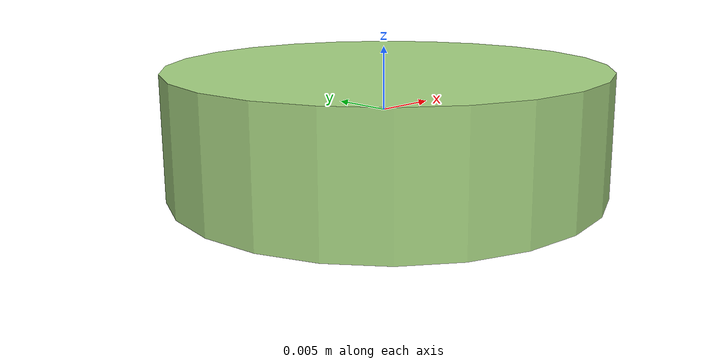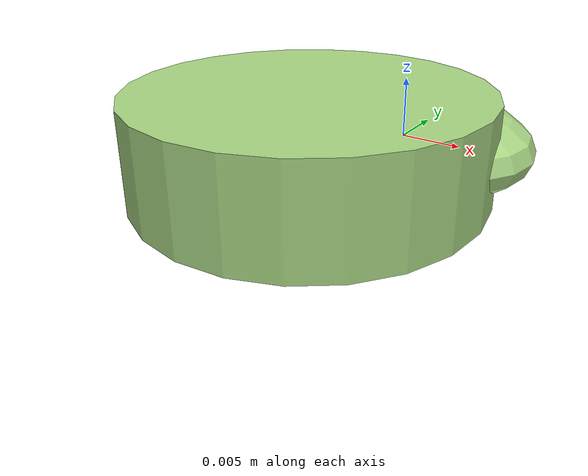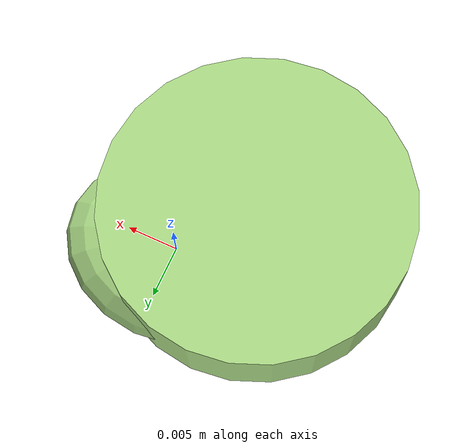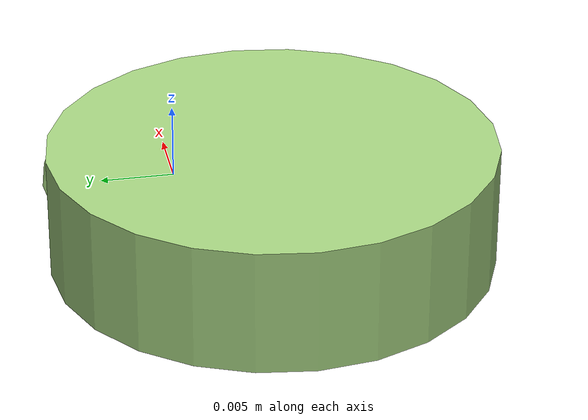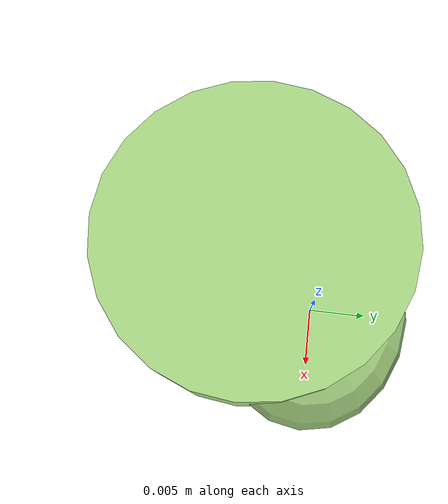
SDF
<?xml version="1.0" ?>
<!-- |    This document was autogenerated by xmacro from data/veggie_template/veggie_base.sdf.xacro  | -->
<!-- |    EDITING THIS FILE BY HAND IS NOT RECOMMENDED                                               | -->
<sdf version="1.8">
	<!-- Parameters -->
	<!-- Base -->
	<!-- Joint 0 -->
	<!-- Link 1 -->
	<!-- Joint 1 -->
	<!-- Link 2 -->
	<!-- Primitives -->
	<!-- All dimensions are half -->
	<!-- Object -->
	<model name="veggie">
		<!-- link0 -->
		<link name="link0">
			<inertial>
				<mass>0.0016902984023957892</mass>
				<inertia>
					<ixx>3.2947850972244385e-08</ixx>
					<ixy>0</ixy>
					<ixz>0</ixz>
					<iyy>4.5659789965372796e-08</iyy>
					<iyz>0</iyz>
					<izz>6.696461260745348e-08</izz>
				</inertia>
			</inertial>
			<visual name="link0_visual">
				<pose>0 0 0 0 0 0</pose>
				<geometry>
					<ellipsoid>
						<radii>0.010855593657918975 0.008957748946207385 0.0041497438592460675</radii>
					</ellipsoid>
				</geometry>
				<material>
					<ambient>0.659 0.839 0.514 1</ambient>
					<diffuse>0.659 0.839 0.514 1</diffuse>
					<specular>0 0 0 0</specular>
					<emissive>0 0 0 1</emissive>
				</material>
			</visual>
			<collision name="link0_collision">
				<pose>0 0 0 0 0 0 </pose>
				<geometry>
					<ellipsoid>
						<radii>0.010855593657918975 0.008957748946207385 0.0041497438592460675</radii>
					</ellipsoid>
				</geometry>
			</collision>
		</link>
		<!-- link1 -->
		<joint name="joint0" type="fixed">
			<pose relative_to="link0">-0.005703641501158089 -0.005830822922364029 0.00047073321326527933 0.0 0.0 0.0</pose>
			<parent>link0</parent>
			<child>link1</child>
		</joint>
		<link name="link1">
			<pose relative_to="joint0">0 0 0 0 0 0</pose>
			<inertial>
				<mass>0.005910715813407155</mass>
				<inertia>
					<ixx>3.663239782168067e-07</ixx>
					<ixy>0</ixy>
					<ixz>0</ixz>
					<iyy>3.663239782168067e-07</iyy>
					<iyz>0</iyz>
					<izz>6.634544873004492e-07</izz>
				</inertia>
			</inertial>
			<visual name="link1_visual">
				<pose>0 0 0 0 0 0</pose>
				<geometry>
					<cylinder>
						<radius>0.01498306026084042</radius>
						<length>0.008380851361653487</length>
					</cylinder>
				</geometry>
				<material>
					<ambient>0.659 0.839 0.514 1</ambient>
					<diffuse>0.659 0.839 0.514 1</diffuse>
					<specular>0 0 0 0</specular>
					<emissive>0 0 0 1</emissive>
				</material>
			</visual>
			<collision name="link1_collision">
				<pose>0 0 0 0 0 0 </pose>
				<geometry>
					<cylinder>
						<radius>0.01498306026084042</radius>
						<length>0.008380851361653487</length>
					</cylinder>
				</geometry>
			</collision>
		</link>
		<!-- link2 -->
	</model>
</sdf>
